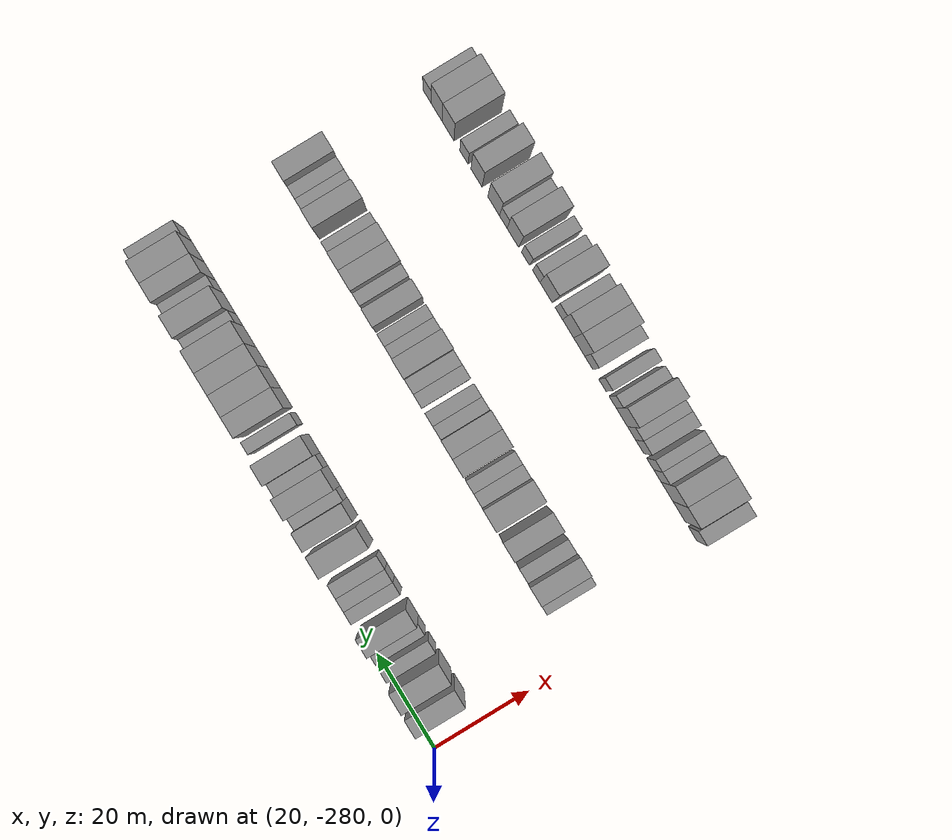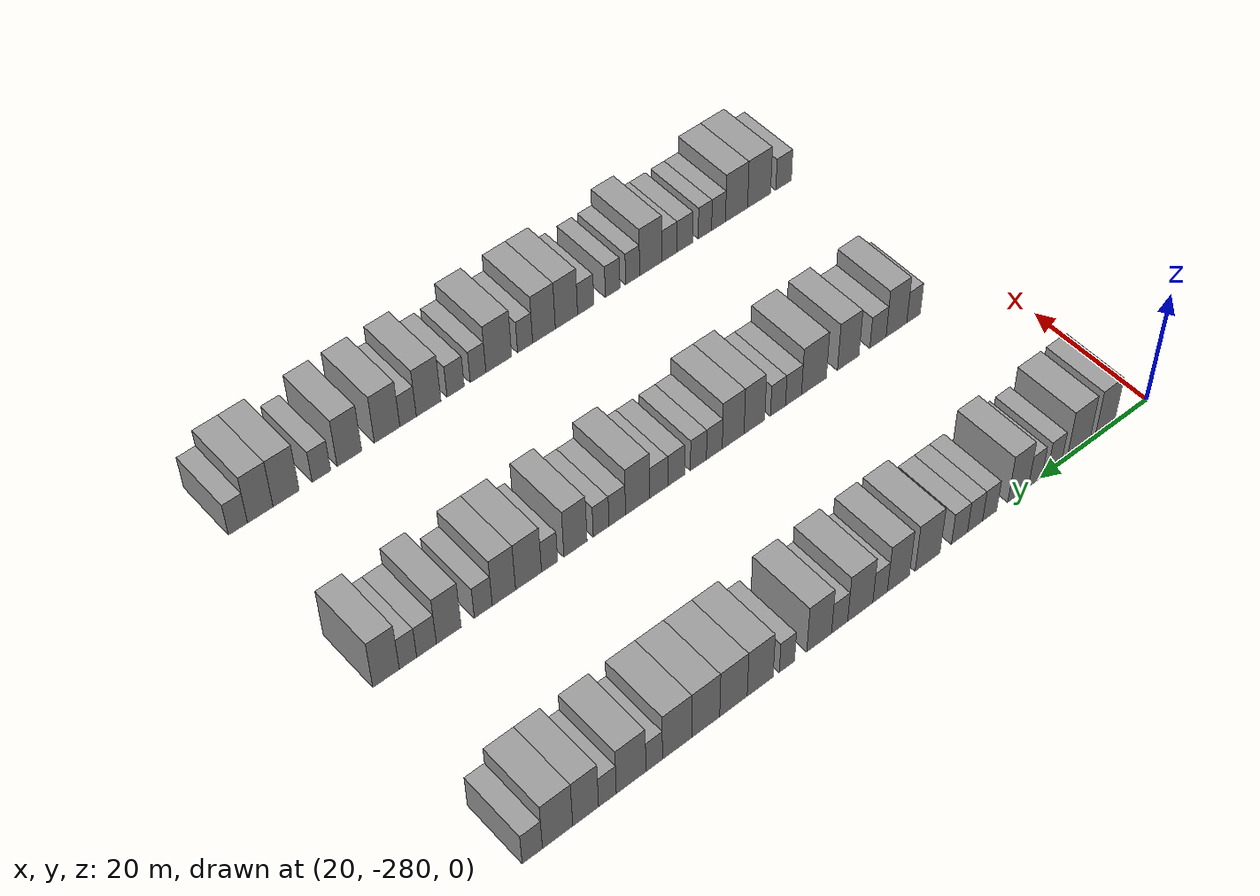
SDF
<sdf version="1.6">
 <world name="default">
  <model name="building_55">
   <static>1</static>
   <pose>25.0000 -271.9595 0 0.000000 0.000000 0.000000</pose>
   <link name="link">
    <pose>0 0 4.50 0 0 0</pose>
    <collision name="collision"><geometry><box><size>10.0000 3.6472 9.0000</size></box></geometry></collision>
    <visual name="visual">
     <cast_shadows>0</cast_shadows>
     <geometry><box><size>10.0000 3.6472 9.0000</size></box></geometry>
     <material>
      <script>
       <uri>model://grey_wall/materials/scripts</uri>
       <uri>model://grey_wall/materials/textures</uri>
       <name>vrc/grey_wall</name>
      </script>
     </material>
    </visual>
   </link>
  </model>
  <model name="building_56">
   <static>1</static>
   <pose>25.0000 -267.0310 0 0.000000 0.000000 0.000000</pose>
   <link name="link">
    <pose>0 0 4.50 0 0 0</pose>
    <collision name="collision"><geometry><box><size>10.0000 4.2097 9.0000</size></box></geometry></collision>
    <visual name="visual">
     <cast_shadows>0</cast_shadows>
     <geometry><box><size>10.0000 4.2097 9.0000</size></box></geometry>
     <material>
      <script>
       <uri>model://grey_wall/materials/scripts</uri>
       <uri>model://grey_wall/materials/textures</uri>
       <name>vrc/grey_wall</name>
      </script>
     </material>
    </visual>
   </link>
  </model>
  <model name="building_57">
   <static>1</static>
   <pose>25.0000 -262.6069 0 0.000000 0.000000 0.000000</pose>
   <link name="link">
    <pose>0 0 3.00 0 0 0</pose>
    <collision name="collision"><geometry><box><size>10.0000 2.6385 6.0000</size></box></geometry></collision>
    <visual name="visual">
     <cast_shadows>0</cast_shadows>
     <geometry><box><size>10.0000 2.6385 6.0000</size></box></geometry>
     <material>
      <script>
       <uri>model://grey_wall/materials/scripts</uri>
       <uri>model://grey_wall/materials/textures</uri>
       <name>vrc/grey_wall</name>
      </script>
     </material>
    </visual>
   </link>
  </model>
  <model name="building_58">
   <static>1</static>
   <pose>25.0000 -259.0505 0 0.000000 0.000000 0.000000</pose>
   <link name="link">
    <pose>0 0 3.00 0 0 0</pose>
    <collision name="collision"><geometry><box><size>10.0000 2.4742 6.0000</size></box></geometry></collision>
    <visual name="visual">
     <cast_shadows>0</cast_shadows>
     <geometry><box><size>10.0000 2.4742 6.0000</size></box></geometry>
     <material>
      <script>
       <uri>model://grey_wall/materials/scripts</uri>
       <uri>model://grey_wall/materials/textures</uri>
       <name>vrc/grey_wall</name>
      </script>
     </material>
    </visual>
   </link>
  </model>
  <model name="building_59">
   <static>1</static>
   <pose>25.0000 -255.9368 0 0.000000 0.000000 0.000000</pose>
   <link name="link">
    <pose>0 0 4.50 0 0 0</pose>
    <collision name="collision"><geometry><box><size>10.0000 3.7534 9.0000</size></box></geometry></collision>
    <visual name="visual">
     <cast_shadows>0</cast_shadows>
     <geometry><box><size>10.0000 3.7534 9.0000</size></box></geometry>
     <material>
      <script>
       <uri>model://grey_wall/materials/scripts</uri>
       <uri>model://grey_wall/materials/textures</uri>
       <name>vrc/grey_wall</name>
      </script>
     </material>
    </visual>
   </link>
  </model>
  <model name="building_60">
   <static>1</static>
   <pose>25.0000 -250.7882 0 0.000000 0.000000 0.000000</pose>
   <link name="link">
    <pose>0 0 3.00 0 0 0</pose>
    <collision name="collision"><geometry><box><size>10.0000 2.5439 6.0000</size></box></geometry></collision>
    <visual name="visual">
     <cast_shadows>0</cast_shadows>
     <geometry><box><size>10.0000 2.5439 6.0000</size></box></geometry>
     <material>
      <script>
       <uri>model://grey_wall/materials/scripts</uri>
       <uri>model://grey_wall/materials/textures</uri>
       <name>vrc/grey_wall</name>
      </script>
     </material>
    </visual>
   </link>
  </model>
  <model name="building_61">
   <static>1</static>
   <pose>25.0000 -248.1809 0 0.000000 0.000000 0.000000</pose>
   <link name="link">
    <pose>0 0 3.00 0 0 0</pose>
    <collision name="collision"><geometry><box><size>10.0000 2.6706 6.0000</size></box></geometry></collision>
    <visual name="visual">
     <cast_shadows>0</cast_shadows>
     <geometry><box><size>10.0000 2.6706 6.0000</size></box></geometry>
     <material>
      <script>
       <uri>model://grey_wall/materials/scripts</uri>
       <uri>model://grey_wall/materials/textures</uri>
       <name>vrc/grey_wall</name>
      </script>
     </material>
    </visual>
   </link>
  </model>
  <model name="building_62">
   <static>1</static>
   <pose>25.0000 -245.4328 0 0.000000 0.000000 0.000000</pose>
   <link name="link">
    <pose>0 0 3.00 0 0 0</pose>
    <collision name="collision"><geometry><box><size>10.0000 2.8257 6.0000</size></box></geometry></collision>
    <visual name="visual">
     <cast_shadows>0</cast_shadows>
     <geometry><box><size>10.0000 2.8257 6.0000</size></box></geometry>
     <material>
      <script>
       <uri>model://grey_wall/materials/scripts</uri>
       <uri>model://grey_wall/materials/textures</uri>
       <name>vrc/grey_wall</name>
      </script>
     </material>
    </visual>
   </link>
  </model>
  <model name="building_63">
   <static>1</static>
   <pose>25.0000 -239.8672 0 0.000000 0.000000 0.000000</pose>
   <link name="link">
    <pose>0 0 4.50 0 0 0</pose>
    <collision name="collision"><geometry><box><size>10.0000 4.3054 9.0000</size></box></geometry></collision>
    <visual name="visual">
     <cast_shadows>0</cast_shadows>
     <geometry><box><size>10.0000 4.3054 9.0000</size></box></geometry>
     <material>
      <script>
       <uri>model://grey_wall/materials/scripts</uri>
       <uri>model://grey_wall/materials/textures</uri>
       <name>vrc/grey_wall</name>
      </script>
     </material>
    </visual>
   </link>
  </model>
  <model name="building_64">
   <static>1</static>
   <pose>25.0000 -234.8320 0 0.000000 0.000000 0.000000</pose>
   <link name="link">
    <pose>0 0 4.50 0 0 0</pose>
    <collision name="collision"><geometry><box><size>10.0000 3.7650 9.0000</size></box></geometry></collision>
    <visual name="visual">
     <cast_shadows>0</cast_shadows>
     <geometry><box><size>10.0000 3.7650 9.0000</size></box></geometry>
     <material>
      <script>
       <uri>model://grey_wall/materials/scripts</uri>
       <uri>model://grey_wall/materials/textures</uri>
       <name>vrc/grey_wall</name>
      </script>
     </material>
    </visual>
   </link>
  </model>
  <model name="building_65">
   <static>1</static>
   <pose>25.0000 -231.7167 0 0.000000 0.000000 0.000000</pose>
   <link name="link">
    <pose>0 0 3.00 0 0 0</pose>
    <collision name="collision"><geometry><box><size>10.0000 2.4655 6.0000</size></box></geometry></collision>
    <visual name="visual">
     <cast_shadows>0</cast_shadows>
     <geometry><box><size>10.0000 2.4655 6.0000</size></box></geometry>
     <material>
      <script>
       <uri>model://grey_wall/materials/scripts</uri>
       <uri>model://grey_wall/materials/textures</uri>
       <name>vrc/grey_wall</name>
      </script>
     </material>
    </visual>
   </link>
  </model>
  <model name="building_66">
   <static>1</static>
   <pose>25.0000 -228.3686 0 0.000000 0.000000 0.000000</pose>
   <link name="link">
    <pose>0 0 4.50 0 0 0</pose>
    <collision name="collision"><geometry><box><size>10.0000 4.2307 9.0000</size></box></geometry></collision>
    <visual name="visual">
     <cast_shadows>0</cast_shadows>
     <geometry><box><size>10.0000 4.2307 9.0000</size></box></geometry>
     <material>
      <script>
       <uri>model://grey_wall/materials/scripts</uri>
       <uri>model://grey_wall/materials/textures</uri>
       <name>vrc/grey_wall</name>
      </script>
     </material>
    </visual>
   </link>
  </model>
  <model name="building_67">
   <static>1</static>
   <pose>25.0000 -224.9166 0 0.000000 0.000000 0.000000</pose>
   <link name="link">
    <pose>0 0 3.00 0 0 0</pose>
    <collision name="collision"><geometry><box><size>10.0000 2.6733 6.0000</size></box></geometry></collision>
    <visual name="visual">
     <cast_shadows>0</cast_shadows>
     <geometry><box><size>10.0000 2.6733 6.0000</size></box></geometry>
     <material>
      <script>
       <uri>model://grey_wall/materials/scripts</uri>
       <uri>model://grey_wall/materials/textures</uri>
       <name>vrc/grey_wall</name>
      </script>
     </material>
    </visual>
   </link>
  </model>
  <model name="building_68">
   <static>1</static>
   <pose>25.0000 -221.5466 0 0.000000 0.000000 0.000000</pose>
   <link name="link">
    <pose>0 0 4.50 0 0 0</pose>
    <collision name="collision"><geometry><box><size>10.0000 4.0667 9.0000</size></box></geometry></collision>
    <visual name="visual">
     <cast_shadows>0</cast_shadows>
     <geometry><box><size>10.0000 4.0667 9.0000</size></box></geometry>
     <material>
      <script>
       <uri>model://grey_wall/materials/scripts</uri>
       <uri>model://grey_wall/materials/textures</uri>
       <name>vrc/grey_wall</name>
      </script>
     </material>
    </visual>
   </link>
  </model>
  <model name="building_69">
   <static>1</static>
   <pose>25.0000 -216.2718 0 0.000000 0.000000 0.000000</pose>
   <link name="link">
    <pose>0 0 3.00 0 0 0</pose>
    <collision name="collision"><geometry><box><size>10.0000 2.4829 6.0000</size></box></geometry></collision>
    <visual name="visual">
     <cast_shadows>0</cast_shadows>
     <geometry><box><size>10.0000 2.4829 6.0000</size></box></geometry>
     <material>
      <script>
       <uri>model://grey_wall/materials/scripts</uri>
       <uri>model://grey_wall/materials/textures</uri>
       <name>vrc/grey_wall</name>
      </script>
     </material>
    </visual>
   </link>
  </model>
  <model name="building_70">
   <static>1</static>
   <pose>25.0000 -211.9600 0 0.000000 0.000000 0.000000</pose>
   <link name="link">
    <pose>0 0 4.50 0 0 0</pose>
    <collision name="collision"><geometry><box><size>10.0000 4.1408 9.0000</size></box></geometry></collision>
    <visual name="visual">
     <cast_shadows>0</cast_shadows>
     <geometry><box><size>10.0000 4.1408 9.0000</size></box></geometry>
     <material>
      <script>
       <uri>model://grey_wall/materials/scripts</uri>
       <uri>model://grey_wall/materials/textures</uri>
       <name>vrc/grey_wall</name>
      </script>
     </material>
    </visual>
   </link>
  </model>
  <model name="building_71">
   <static>1</static>
   <pose>25.0000 -207.7153 0 0.000000 0.000000 0.000000</pose>
   <link name="link">
    <pose>0 0 4.50 0 0 0</pose>
    <collision name="collision"><geometry><box><size>10.0000 4.3486 9.0000</size></box></geometry></collision>
    <visual name="visual">
     <cast_shadows>0</cast_shadows>
     <geometry><box><size>10.0000 4.3486 9.0000</size></box></geometry>
     <material>
      <script>
       <uri>model://grey_wall/materials/scripts</uri>
       <uri>model://grey_wall/materials/textures</uri>
       <name>vrc/grey_wall</name>
      </script>
     </material>
    </visual>
   </link>
  </model>
  <model name="building_72">
   <static>1</static>
   <pose>25.0000 -203.3514 0 0.000000 0.000000 0.000000</pose>
   <link name="link">
    <pose>0 0 4.50 0 0 0</pose>
    <collision name="collision"><geometry><box><size>10.0000 4.3791 9.0000</size></box></geometry></collision>
    <visual name="visual">
     <cast_shadows>0</cast_shadows>
     <geometry><box><size>10.0000 4.3791 9.0000</size></box></geometry>
     <material>
      <script>
       <uri>model://grey_wall/materials/scripts</uri>
       <uri>model://grey_wall/materials/textures</uri>
       <name>vrc/grey_wall</name>
      </script>
     </material>
    </visual>
   </link>
  </model>
  <model name="building_73">
   <static>1</static>
   <pose>25.0000 -198.9130 0 0.000000 0.000000 0.000000</pose>
   <link name="link">
    <pose>0 0 4.50 0 0 0</pose>
    <collision name="collision"><geometry><box><size>10.0000 4.4978 9.0000</size></box></geometry></collision>
    <visual name="visual">
     <cast_shadows>0</cast_shadows>
     <geometry><box><size>10.0000 4.4978 9.0000</size></box></geometry>
     <material>
      <script>
       <uri>model://grey_wall/materials/scripts</uri>
       <uri>model://grey_wall/materials/textures</uri>
       <name>vrc/grey_wall</name>
      </script>
     </material>
    </visual>
   </link>
  </model>
  <model name="building_74">
   <static>1</static>
   <pose>25.0000 -195.4027 0 0.000000 0.000000 0.000000</pose>
   <link name="link">
    <pose>0 0 3.00 0 0 0</pose>
    <collision name="collision"><geometry><box><size>10.0000 2.5228 6.0000</size></box></geometry></collision>
    <visual name="visual">
     <cast_shadows>0</cast_shadows>
     <geometry><box><size>10.0000 2.5228 6.0000</size></box></geometry>
     <material>
      <script>
       <uri>model://grey_wall/materials/scripts</uri>
       <uri>model://grey_wall/materials/textures</uri>
       <name>vrc/grey_wall</name>
      </script>
     </material>
    </visual>
   </link>
  </model>
  <model name="building_75">
   <static>1</static>
   <pose>25.0000 -191.9128 0 0.000000 0.000000 0.000000</pose>
   <link name="link">
    <pose>0 0 4.50 0 0 0</pose>
    <collision name="collision"><geometry><box><size>10.0000 4.4570 9.0000</size></box></geometry></collision>
    <visual name="visual">
     <cast_shadows>0</cast_shadows>
     <geometry><box><size>10.0000 4.4570 9.0000</size></box></geometry>
     <material>
      <script>
       <uri>model://grey_wall/materials/scripts</uri>
       <uri>model://grey_wall/materials/textures</uri>
       <name>vrc/grey_wall</name>
      </script>
     </material>
    </visual>
   </link>
  </model>
  <model name="building_76">
   <static>1</static>
   <pose>25.0000 -188.3634 0 0.000000 0.000000 0.000000</pose>
   <link name="link">
    <pose>0 0 3.00 0 0 0</pose>
    <collision name="collision"><geometry><box><size>10.0000 2.6416 6.0000</size></box></geometry></collision>
    <visual name="visual">
     <cast_shadows>0</cast_shadows>
     <geometry><box><size>10.0000 2.6416 6.0000</size></box></geometry>
     <material>
      <script>
       <uri>model://grey_wall/materials/scripts</uri>
       <uri>model://grey_wall/materials/textures</uri>
       <name>vrc/grey_wall</name>
      </script>
     </material>
    </visual>
   </link>
  </model>
  <model name="building_77">
   <static>1</static>
   <pose>25.0000 -185.1366 0 0.000000 0.000000 0.000000</pose>
   <link name="link">
    <pose>0 0 4.50 0 0 0</pose>
    <collision name="collision"><geometry><box><size>10.0000 3.8121 9.0000</size></box></geometry></collision>
    <visual name="visual">
     <cast_shadows>0</cast_shadows>
     <geometry><box><size>10.0000 3.8121 9.0000</size></box></geometry>
     <material>
      <script>
       <uri>model://grey_wall/materials/scripts</uri>
       <uri>model://grey_wall/materials/textures</uri>
       <name>vrc/grey_wall</name>
      </script>
     </material>
    </visual>
   </link>
  </model>
  <model name="building_78">
   <static>1</static>
   <pose>25.0000 -181.0215 0 0.000000 0.000000 0.000000</pose>
   <link name="link">
    <pose>0 0 4.50 0 0 0</pose>
    <collision name="collision"><geometry><box><size>10.0000 4.4180 9.0000</size></box></geometry></collision>
    <visual name="visual">
     <cast_shadows>0</cast_shadows>
     <geometry><box><size>10.0000 4.4180 9.0000</size></box></geometry>
     <material>
      <script>
       <uri>model://grey_wall/materials/scripts</uri>
       <uri>model://grey_wall/materials/textures</uri>
       <name>vrc/grey_wall</name>
      </script>
     </material>
    </visual>
   </link>
  </model>
  <model name="building_79">
   <static>1</static>
   <pose>25.0000 -177.3438 0 0.000000 0.000000 0.000000</pose>
   <link name="link">
    <pose>0 0 3.00 0 0 0</pose>
    <collision name="collision"><geometry><box><size>10.0000 2.9374 6.0000</size></box></geometry></collision>
    <visual name="visual">
     <cast_shadows>0</cast_shadows>
     <geometry><box><size>10.0000 2.9374 6.0000</size></box></geometry>
     <material>
      <script>
       <uri>model://grey_wall/materials/scripts</uri>
       <uri>model://grey_wall/materials/textures</uri>
       <name>vrc/grey_wall</name>
      </script>
     </material>
    </visual>
   </link>
  </model>
  <model name="building_291">
   <static>1</static>
   <pose>55.0000 -267.0393 0 0.000000 0.000000 0.000000</pose>
   <link name="link">
    <pose>0 0 3.00 0 0 0</pose>
    <collision name="collision"><geometry><box><size>10.0000 2.5404 6.0000</size></box></geometry></collision>
    <visual name="visual">
     <cast_shadows>0</cast_shadows>
     <geometry><box><size>10.0000 2.5404 6.0000</size></box></geometry>
     <material>
      <script>
       <uri>model://grey_wall/materials/scripts</uri>
       <uri>model://grey_wall/materials/textures</uri>
       <name>vrc/grey_wall</name>
      </script>
     </material>
    </visual>
   </link>
  </model>
  <model name="building_292">
   <static>1</static>
   <pose>55.0000 -263.8429 0 0.000000 0.000000 0.000000</pose>
   <link name="link">
    <pose>0 0 4.50 0 0 0</pose>
    <collision name="collision"><geometry><box><size>10.0000 3.8524 9.0000</size></box></geometry></collision>
    <visual name="visual">
     <cast_shadows>0</cast_shadows>
     <geometry><box><size>10.0000 3.8524 9.0000</size></box></geometry>
     <material>
      <script>
       <uri>model://grey_wall/materials/scripts</uri>
       <uri>model://grey_wall/materials/textures</uri>
       <name>vrc/grey_wall</name>
      </script>
     </material>
    </visual>
   </link>
  </model>
  <model name="building_293">
   <static>1</static>
   <pose>55.0000 -260.4211 0 0.000000 0.000000 0.000000</pose>
   <link name="link">
    <pose>0 0 3.00 0 0 0</pose>
    <collision name="collision"><geometry><box><size>10.0000 2.9912 6.0000</size></box></geometry></collision>
    <visual name="visual">
     <cast_shadows>0</cast_shadows>
     <geometry><box><size>10.0000 2.9912 6.0000</size></box></geometry>
     <material>
      <script>
       <uri>model://grey_wall/materials/scripts</uri>
       <uri>model://grey_wall/materials/textures</uri>
       <name>vrc/grey_wall</name>
      </script>
     </material>
    </visual>
   </link>
  </model>
  <model name="building_294">
   <static>1</static>
   <pose>55.0000 -254.9683 0 0.000000 0.000000 0.000000</pose>
   <link name="link">
    <pose>0 0 4.50 0 0 0</pose>
    <collision name="collision"><geometry><box><size>10.0000 3.9144 9.0000</size></box></geometry></collision>
    <visual name="visual">
     <cast_shadows>0</cast_shadows>
     <geometry><box><size>10.0000 3.9144 9.0000</size></box></geometry>
     <material>
      <script>
       <uri>model://grey_wall/materials/scripts</uri>
       <uri>model://grey_wall/materials/textures</uri>
       <name>vrc/grey_wall</name>
      </script>
     </material>
    </visual>
   </link>
  </model>
  <model name="building_295">
   <static>1</static>
   <pose>55.0000 -248.7793 0 0.000000 0.000000 0.000000</pose>
   <link name="link">
    <pose>0 0 4.50 0 0 0</pose>
    <collision name="collision"><geometry><box><size>10.0000 4.4635 9.0000</size></box></geometry></collision>
    <visual name="visual">
     <cast_shadows>0</cast_shadows>
     <geometry><box><size>10.0000 4.4635 9.0000</size></box></geometry>
     <material>
      <script>
       <uri>model://grey_wall/materials/scripts</uri>
       <uri>model://grey_wall/materials/textures</uri>
       <name>vrc/grey_wall</name>
      </script>
     </material>
    </visual>
   </link>
  </model>
  <model name="building_296">
   <static>1</static>
   <pose>55.0000 -245.1224 0 0.000000 0.000000 0.000000</pose>
   <link name="link">
    <pose>0 0 3.00 0 0 0</pose>
    <collision name="collision"><geometry><box><size>10.0000 2.8504 6.0000</size></box></geometry></collision>
    <visual name="visual">
     <cast_shadows>0</cast_shadows>
     <geometry><box><size>10.0000 2.8504 6.0000</size></box></geometry>
     <material>
      <script>
       <uri>model://grey_wall/materials/scripts</uri>
       <uri>model://grey_wall/materials/textures</uri>
       <name>vrc/grey_wall</name>
      </script>
     </material>
    </visual>
   </link>
  </model>
  <model name="building_297">
   <static>1</static>
   <pose>55.0000 -242.3772 0 0.000000 0.000000 0.000000</pose>
   <link name="link">
    <pose>0 0 3.00 0 0 0</pose>
    <collision name="collision"><geometry><box><size>10.0000 2.6400 6.0000</size></box></geometry></collision>
    <visual name="visual">
     <cast_shadows>0</cast_shadows>
     <geometry><box><size>10.0000 2.6400 6.0000</size></box></geometry>
     <material>
      <script>
       <uri>model://grey_wall/materials/scripts</uri>
       <uri>model://grey_wall/materials/textures</uri>
       <name>vrc/grey_wall</name>
      </script>
     </material>
    </visual>
   </link>
  </model>
  <model name="building_298">
   <static>1</static>
   <pose>55.0000 -238.2558 0 0.000000 0.000000 0.000000</pose>
   <link name="link">
    <pose>0 0 4.50 0 0 0</pose>
    <collision name="collision"><geometry><box><size>10.0000 3.6026 9.0000</size></box></geometry></collision>
    <visual name="visual">
     <cast_shadows>0</cast_shadows>
     <geometry><box><size>10.0000 3.6026 9.0000</size></box></geometry>
     <material>
      <script>
       <uri>model://grey_wall/materials/scripts</uri>
       <uri>model://grey_wall/materials/textures</uri>
       <name>vrc/grey_wall</name>
      </script>
     </material>
    </visual>
   </link>
  </model>
  <model name="building_299">
   <static>1</static>
   <pose>55.0000 -234.5783 0 0.000000 0.000000 0.000000</pose>
   <link name="link">
    <pose>0 0 4.50 0 0 0</pose>
    <collision name="collision"><geometry><box><size>10.0000 3.7525 9.0000</size></box></geometry></collision>
    <visual name="visual">
     <cast_shadows>0</cast_shadows>
     <geometry><box><size>10.0000 3.7525 9.0000</size></box></geometry>
     <material>
      <script>
       <uri>model://grey_wall/materials/scripts</uri>
       <uri>model://grey_wall/materials/textures</uri>
       <name>vrc/grey_wall</name>
      </script>
     </material>
    </visual>
   </link>
  </model>
  <model name="building_300">
   <static>1</static>
   <pose>55.0000 -231.3506 0 0.000000 0.000000 0.000000</pose>
   <link name="link">
    <pose>0 0 3.00 0 0 0</pose>
    <collision name="collision"><geometry><box><size>10.0000 2.7028 6.0000</size></box></geometry></collision>
    <visual name="visual">
     <cast_shadows>0</cast_shadows>
     <geometry><box><size>10.0000 2.7028 6.0000</size></box></geometry>
     <material>
      <script>
       <uri>model://grey_wall/materials/scripts</uri>
       <uri>model://grey_wall/materials/textures</uri>
       <name>vrc/grey_wall</name>
      </script>
     </material>
    </visual>
   </link>
  </model>
  <model name="building_301">
   <static>1</static>
   <pose>55.0000 -228.6457 0 0.000000 0.000000 0.000000</pose>
   <link name="link">
    <pose>0 0 3.00 0 0 0</pose>
    <collision name="collision"><geometry><box><size>10.0000 2.7071 6.0000</size></box></geometry></collision>
    <visual name="visual">
     <cast_shadows>0</cast_shadows>
     <geometry><box><size>10.0000 2.7071 6.0000</size></box></geometry>
     <material>
      <script>
       <uri>model://grey_wall/materials/scripts</uri>
       <uri>model://grey_wall/materials/textures</uri>
       <name>vrc/grey_wall</name>
      </script>
     </material>
    </visual>
   </link>
  </model>
  <model name="building_302">
   <static>1</static>
   <pose>55.0000 -224.8862 0 0.000000 0.000000 0.000000</pose>
   <link name="link">
    <pose>0 0 3.00 0 0 0</pose>
    <collision name="collision"><geometry><box><size>10.0000 2.8118 6.0000</size></box></geometry></collision>
    <visual name="visual">
     <cast_shadows>0</cast_shadows>
     <geometry><box><size>10.0000 2.8118 6.0000</size></box></geometry>
     <material>
      <script>
       <uri>model://grey_wall/materials/scripts</uri>
       <uri>model://grey_wall/materials/textures</uri>
       <name>vrc/grey_wall</name>
      </script>
     </material>
    </visual>
   </link>
  </model>
  <model name="building_303">
   <static>1</static>
   <pose>55.0000 -221.9806 0 0.000000 0.000000 0.000000</pose>
   <link name="link">
    <pose>0 0 3.00 0 0 0</pose>
    <collision name="collision"><geometry><box><size>10.0000 2.9994 6.0000</size></box></geometry></collision>
    <visual name="visual">
     <cast_shadows>0</cast_shadows>
     <geometry><box><size>10.0000 2.9994 6.0000</size></box></geometry>
     <material>
      <script>
       <uri>model://grey_wall/materials/scripts</uri>
       <uri>model://grey_wall/materials/textures</uri>
       <name>vrc/grey_wall</name>
      </script>
     </material>
    </visual>
   </link>
  </model>
  <model name="building_304">
   <static>1</static>
   <pose>55.0000 -218.4861 0 0.000000 0.000000 0.000000</pose>
   <link name="link">
    <pose>0 0 4.50 0 0 0</pose>
    <collision name="collision"><geometry><box><size>10.0000 3.9897 9.0000</size></box></geometry></collision>
    <visual name="visual">
     <cast_shadows>0</cast_shadows>
     <geometry><box><size>10.0000 3.9897 9.0000</size></box></geometry>
     <material>
      <script>
       <uri>model://grey_wall/materials/scripts</uri>
       <uri>model://grey_wall/materials/textures</uri>
       <name>vrc/grey_wall</name>
      </script>
     </material>
    </visual>
   </link>
  </model>
  <model name="building_305">
   <static>1</static>
   <pose>55.0000 -215.1418 0 0.000000 0.000000 0.000000</pose>
   <link name="link">
    <pose>0 0 3.00 0 0 0</pose>
    <collision name="collision"><geometry><box><size>10.0000 2.6989 6.0000</size></box></geometry></collision>
    <visual name="visual">
     <cast_shadows>0</cast_shadows>
     <geometry><box><size>10.0000 2.6989 6.0000</size></box></geometry>
     <material>
      <script>
       <uri>model://grey_wall/materials/scripts</uri>
       <uri>model://grey_wall/materials/textures</uri>
       <name>vrc/grey_wall</name>
      </script>
     </material>
    </visual>
   </link>
  </model>
  <model name="building_306">
   <static>1</static>
   <pose>55.0000 -212.5102 0 0.000000 0.000000 0.000000</pose>
   <link name="link">
    <pose>0 0 3.00 0 0 0</pose>
    <collision name="collision"><geometry><box><size>10.0000 2.5643 6.0000</size></box></geometry></collision>
    <visual name="visual">
     <cast_shadows>0</cast_shadows>
     <geometry><box><size>10.0000 2.5643 6.0000</size></box></geometry>
     <material>
      <script>
       <uri>model://grey_wall/materials/scripts</uri>
       <uri>model://grey_wall/materials/textures</uri>
       <name>vrc/grey_wall</name>
      </script>
     </material>
    </visual>
   </link>
  </model>
  <model name="building_307">
   <static>1</static>
   <pose>55.0000 -208.3705 0 0.000000 0.000000 0.000000</pose>
   <link name="link">
    <pose>0 0 4.50 0 0 0</pose>
    <collision name="collision"><geometry><box><size>10.0000 3.7149 9.0000</size></box></geometry></collision>
    <visual name="visual">
     <cast_shadows>0</cast_shadows>
     <geometry><box><size>10.0000 3.7149 9.0000</size></box></geometry>
     <material>
      <script>
       <uri>model://grey_wall/materials/scripts</uri>
       <uri>model://grey_wall/materials/textures</uri>
       <name>vrc/grey_wall</name>
      </script>
     </material>
    </visual>
   </link>
  </model>
  <model name="building_308">
   <static>1</static>
   <pose>55.0000 -204.2377 0 0.000000 0.000000 0.000000</pose>
   <link name="link">
    <pose>0 0 3.00 0 0 0</pose>
    <collision name="collision"><geometry><box><size>10.0000 2.5507 6.0000</size></box></geometry></collision>
    <visual name="visual">
     <cast_shadows>0</cast_shadows>
     <geometry><box><size>10.0000 2.5507 6.0000</size></box></geometry>
     <material>
      <script>
       <uri>model://grey_wall/materials/scripts</uri>
       <uri>model://grey_wall/materials/textures</uri>
       <name>vrc/grey_wall</name>
      </script>
     </material>
    </visual>
   </link>
  </model>
  <model name="building_309">
   <static>1</static>
   <pose>55.0000 -200.9218 0 0.000000 0.000000 0.000000</pose>
   <link name="link">
    <pose>0 0 4.50 0 0 0</pose>
    <collision name="collision"><geometry><box><size>10.0000 4.0811 9.0000</size></box></geometry></collision>
    <visual name="visual">
     <cast_shadows>0</cast_shadows>
     <geometry><box><size>10.0000 4.0811 9.0000</size></box></geometry>
     <material>
      <script>
       <uri>model://grey_wall/materials/scripts</uri>
       <uri>model://grey_wall/materials/textures</uri>
       <name>vrc/grey_wall</name>
      </script>
     </material>
    </visual>
   </link>
  </model>
  <model name="building_310">
   <static>1</static>
   <pose>55.0000 -197.0765 0 0.000000 0.000000 0.000000</pose>
   <link name="link">
    <pose>0 0 4.50 0 0 0</pose>
    <collision name="collision"><geometry><box><size>10.0000 3.6095 9.0000</size></box></geometry></collision>
    <visual name="visual">
     <cast_shadows>0</cast_shadows>
     <geometry><box><size>10.0000 3.6095 9.0000</size></box></geometry>
     <material>
      <script>
       <uri>model://grey_wall/materials/scripts</uri>
       <uri>model://grey_wall/materials/textures</uri>
       <name>vrc/grey_wall</name>
      </script>
     </material>
    </visual>
   </link>
  </model>
  <model name="building_311">
   <static>1</static>
   <pose>55.0000 -193.8818 0 0.000000 0.000000 0.000000</pose>
   <link name="link">
    <pose>0 0 3.00 0 0 0</pose>
    <collision name="collision"><geometry><box><size>10.0000 2.7800 6.0000</size></box></geometry></collision>
    <visual name="visual">
     <cast_shadows>0</cast_shadows>
     <geometry><box><size>10.0000 2.7800 6.0000</size></box></geometry>
     <material>
      <script>
       <uri>model://grey_wall/materials/scripts</uri>
       <uri>model://grey_wall/materials/textures</uri>
       <name>vrc/grey_wall</name>
      </script>
     </material>
    </visual>
   </link>
  </model>
  <model name="building_312">
   <static>1</static>
   <pose>55.0000 -188.6140 0 0.000000 0.000000 0.000000</pose>
   <link name="link">
    <pose>0 0 4.50 0 0 0</pose>
    <collision name="collision"><geometry><box><size>10.0000 3.7556 9.0000</size></box></geometry></collision>
    <visual name="visual">
     <cast_shadows>0</cast_shadows>
     <geometry><box><size>10.0000 3.7556 9.0000</size></box></geometry>
     <material>
      <script>
       <uri>model://grey_wall/materials/scripts</uri>
       <uri>model://grey_wall/materials/textures</uri>
       <name>vrc/grey_wall</name>
      </script>
     </material>
    </visual>
   </link>
  </model>
  <model name="building_313">
   <static>1</static>
   <pose>55.0000 -185.2572 0 0.000000 0.000000 0.000000</pose>
   <link name="link">
    <pose>0 0 3.00 0 0 0</pose>
    <collision name="collision"><geometry><box><size>10.0000 2.9581 6.0000</size></box></geometry></collision>
    <visual name="visual">
     <cast_shadows>0</cast_shadows>
     <geometry><box><size>10.0000 2.9581 6.0000</size></box></geometry>
     <material>
      <script>
       <uri>model://grey_wall/materials/scripts</uri>
       <uri>model://grey_wall/materials/textures</uri>
       <name>vrc/grey_wall</name>
      </script>
     </material>
    </visual>
   </link>
  </model>
  <model name="building_314">
   <static>1</static>
   <pose>55.0000 -182.4804 0 0.000000 0.000000 0.000000</pose>
   <link name="link">
    <pose>0 0 3.00 0 0 0</pose>
    <collision name="collision"><geometry><box><size>10.0000 2.5955 6.0000</size></box></geometry></collision>
    <visual name="visual">
     <cast_shadows>0</cast_shadows>
     <geometry><box><size>10.0000 2.5955 6.0000</size></box></geometry>
     <material>
      <script>
       <uri>model://grey_wall/materials/scripts</uri>
       <uri>model://grey_wall/materials/textures</uri>
       <name>vrc/grey_wall</name>
      </script>
     </material>
    </visual>
   </link>
  </model>
  <model name="building_315">
   <static>1</static>
   <pose>55.0000 -179.2193 0 0.000000 0.000000 0.000000</pose>
   <link name="link">
    <pose>0 0 4.50 0 0 0</pose>
    <collision name="collision"><geometry><box><size>10.0000 3.9267 9.0000</size></box></geometry></collision>
    <visual name="visual">
     <cast_shadows>0</cast_shadows>
     <geometry><box><size>10.0000 3.9267 9.0000</size></box></geometry>
     <material>
      <script>
       <uri>model://grey_wall/materials/scripts</uri>
       <uri>model://grey_wall/materials/textures</uri>
       <name>vrc/grey_wall</name>
      </script>
     </material>
    </visual>
   </link>
  </model>
  <model name="building_527">
   <static>1</static>
   <pose>85.0000 -271.0180 0 0.000000 0.000000 0.000000</pose>
   <link name="link">
    <pose>0 0 3.00 0 0 0</pose>
    <collision name="collision"><geometry><box><size>10.0000 2.9690 6.0000</size></box></geometry></collision>
    <visual name="visual">
     <cast_shadows>0</cast_shadows>
     <geometry><box><size>10.0000 2.9690 6.0000</size></box></geometry>
     <material>
      <script>
       <uri>model://grey_wall/materials/scripts</uri>
       <uri>model://grey_wall/materials/textures</uri>
       <name>vrc/grey_wall</name>
      </script>
     </material>
    </visual>
   </link>
  </model>
  <model name="building_528">
   <static>1</static>
   <pose>85.0000 -266.3637 0 0.000000 0.000000 0.000000</pose>
   <link name="link">
    <pose>0 0 4.50 0 0 0</pose>
    <collision name="collision"><geometry><box><size>10.0000 4.3396 9.0000</size></box></geometry></collision>
    <visual name="visual">
     <cast_shadows>0</cast_shadows>
     <geometry><box><size>10.0000 4.3396 9.0000</size></box></geometry>
     <material>
      <script>
       <uri>model://grey_wall/materials/scripts</uri>
       <uri>model://grey_wall/materials/textures</uri>
       <name>vrc/grey_wall</name>
      </script>
     </material>
    </visual>
   </link>
  </model>
  <model name="building_529">
   <static>1</static>
   <pose>85.0000 -262.1334 0 0.000000 0.000000 0.000000</pose>
   <link name="link">
    <pose>0 0 4.50 0 0 0</pose>
    <collision name="collision"><geometry><box><size>10.0000 4.1210 9.0000</size></box></geometry></collision>
    <visual name="visual">
     <cast_shadows>0</cast_shadows>
     <geometry><box><size>10.0000 4.1210 9.0000</size></box></geometry>
     <material>
      <script>
       <uri>model://grey_wall/materials/scripts</uri>
       <uri>model://grey_wall/materials/textures</uri>
       <name>vrc/grey_wall</name>
      </script>
     </material>
    </visual>
   </link>
  </model>
  <model name="building_530">
   <static>1</static>
   <pose>85.0000 -258.7859 0 0.000000 0.000000 0.000000</pose>
   <link name="link">
    <pose>0 0 3.00 0 0 0</pose>
    <collision name="collision"><geometry><box><size>10.0000 2.5741 6.0000</size></box></geometry></collision>
    <visual name="visual">
     <cast_shadows>0</cast_shadows>
     <geometry><box><size>10.0000 2.5741 6.0000</size></box></geometry>
     <material>
      <script>
       <uri>model://grey_wall/materials/scripts</uri>
       <uri>model://grey_wall/materials/textures</uri>
       <name>vrc/grey_wall</name>
      </script>
     </material>
    </visual>
   </link>
  </model>
  <model name="building_531">
   <static>1</static>
   <pose>85.0000 -256.2728 0 0.000000 0.000000 0.000000</pose>
   <link name="link">
    <pose>0 0 3.00 0 0 0</pose>
    <collision name="collision"><geometry><box><size>10.0000 2.4522 6.0000</size></box></geometry></collision>
    <visual name="visual">
     <cast_shadows>0</cast_shadows>
     <geometry><box><size>10.0000 2.4522 6.0000</size></box></geometry>
     <material>
      <script>
       <uri>model://grey_wall/materials/scripts</uri>
       <uri>model://grey_wall/materials/textures</uri>
       <name>vrc/grey_wall</name>
      </script>
     </material>
    </visual>
   </link>
  </model>
  <model name="building_532">
   <static>1</static>
   <pose>85.0000 -252.6139 0 0.000000 0.000000 0.000000</pose>
   <link name="link">
    <pose>0 0 3.00 0 0 0</pose>
    <collision name="collision"><geometry><box><size>10.0000 2.8656 6.0000</size></box></geometry></collision>
    <visual name="visual">
     <cast_shadows>0</cast_shadows>
     <geometry><box><size>10.0000 2.8656 6.0000</size></box></geometry>
     <material>
      <script>
       <uri>model://grey_wall/materials/scripts</uri>
       <uri>model://grey_wall/materials/textures</uri>
       <name>vrc/grey_wall</name>
      </script>
     </material>
    </visual>
   </link>
  </model>
  <model name="building_533">
   <static>1</static>
   <pose>85.0000 -249.7798 0 0.000000 0.000000 0.000000</pose>
   <link name="link">
    <pose>0 0 3.00 0 0 0</pose>
    <collision name="collision"><geometry><box><size>10.0000 2.8025 6.0000</size></box></geometry></collision>
    <visual name="visual">
     <cast_shadows>0</cast_shadows>
     <geometry><box><size>10.0000 2.8025 6.0000</size></box></geometry>
     <material>
      <script>
       <uri>model://grey_wall/materials/scripts</uri>
       <uri>model://grey_wall/materials/textures</uri>
       <name>vrc/grey_wall</name>
      </script>
     </material>
    </visual>
   </link>
  </model>
  <model name="building_534">
   <static>1</static>
   <pose>85.0000 -246.3937 0 0.000000 0.000000 0.000000</pose>
   <link name="link">
    <pose>0 0 4.50 0 0 0</pose>
    <collision name="collision"><geometry><box><size>10.0000 3.9698 9.0000</size></box></geometry></collision>
    <visual name="visual">
     <cast_shadows>0</cast_shadows>
     <geometry><box><size>10.0000 3.9698 9.0000</size></box></geometry>
     <material>
      <script>
       <uri>model://grey_wall/materials/scripts</uri>
       <uri>model://grey_wall/materials/textures</uri>
       <name>vrc/grey_wall</name>
      </script>
     </material>
    </visual>
   </link>
  </model>
  <model name="building_535">
   <static>1</static>
   <pose>85.0000 -243.1587 0 0.000000 0.000000 0.000000</pose>
   <link name="link">
    <pose>0 0 3.00 0 0 0</pose>
    <collision name="collision"><geometry><box><size>10.0000 2.5003 6.0000</size></box></geometry></collision>
    <visual name="visual">
     <cast_shadows>0</cast_shadows>
     <geometry><box><size>10.0000 2.5003 6.0000</size></box></geometry>
     <material>
      <script>
       <uri>model://grey_wall/materials/scripts</uri>
       <uri>model://grey_wall/materials/textures</uri>
       <name>vrc/grey_wall</name>
      </script>
     </material>
    </visual>
   </link>
  </model>
  <model name="building_536">
   <static>1</static>
   <pose>85.0000 -239.6136 0 0.000000 0.000000 0.000000</pose>
   <link name="link">
    <pose>0 0 3.00 0 0 0</pose>
    <collision name="collision"><geometry><box><size>10.0000 2.5898 6.0000</size></box></geometry></collision>
    <visual name="visual">
     <cast_shadows>0</cast_shadows>
     <geometry><box><size>10.0000 2.5898 6.0000</size></box></geometry>
     <material>
      <script>
       <uri>model://grey_wall/materials/scripts</uri>
       <uri>model://grey_wall/materials/textures</uri>
       <name>vrc/grey_wall</name>
      </script>
     </material>
    </visual>
   </link>
  </model>
  <model name="building_537">
   <static>1</static>
   <pose>85.0000 -234.8967 0 0.000000 0.000000 0.000000</pose>
   <link name="link">
    <pose>0 0 3.00 0 0 0</pose>
    <collision name="collision"><geometry><box><size>10.0000 2.8440 6.0000</size></box></geometry></collision>
    <visual name="visual">
     <cast_shadows>0</cast_shadows>
     <geometry><box><size>10.0000 2.8440 6.0000</size></box></geometry>
     <material>
      <script>
       <uri>model://grey_wall/materials/scripts</uri>
       <uri>model://grey_wall/materials/textures</uri>
       <name>vrc/grey_wall</name>
      </script>
     </material>
    </visual>
   </link>
  </model>
  <model name="building_538">
   <static>1</static>
   <pose>85.0000 -231.5458 0 0.000000 0.000000 0.000000</pose>
   <link name="link">
    <pose>0 0 4.50 0 0 0</pose>
    <collision name="collision"><geometry><box><size>10.0000 3.8579 9.0000</size></box></geometry></collision>
    <visual name="visual">
     <cast_shadows>0</cast_shadows>
     <geometry><box><size>10.0000 3.8579 9.0000</size></box></geometry>
     <material>
      <script>
       <uri>model://grey_wall/materials/scripts</uri>
       <uri>model://grey_wall/materials/textures</uri>
       <name>vrc/grey_wall</name>
      </script>
     </material>
    </visual>
   </link>
  </model>
  <model name="building_539">
   <static>1</static>
   <pose>85.0000 -227.6731 0 0.000000 0.000000 0.000000</pose>
   <link name="link">
    <pose>0 0 4.50 0 0 0</pose>
    <collision name="collision"><geometry><box><size>10.0000 3.8875 9.0000</size></box></geometry></collision>
    <visual name="visual">
     <cast_shadows>0</cast_shadows>
     <geometry><box><size>10.0000 3.8875 9.0000</size></box></geometry>
     <material>
      <script>
       <uri>model://grey_wall/materials/scripts</uri>
       <uri>model://grey_wall/materials/textures</uri>
       <name>vrc/grey_wall</name>
      </script>
     </material>
    </visual>
   </link>
  </model>
  <model name="building_540">
   <static>1</static>
   <pose>85.0000 -224.4523 0 0.000000 0.000000 0.000000</pose>
   <link name="link">
    <pose>0 0 3.00 0 0 0</pose>
    <collision name="collision"><geometry><box><size>10.0000 2.5542 6.0000</size></box></geometry></collision>
    <visual name="visual">
     <cast_shadows>0</cast_shadows>
     <geometry><box><size>10.0000 2.5542 6.0000</size></box></geometry>
     <material>
      <script>
       <uri>model://grey_wall/materials/scripts</uri>
       <uri>model://grey_wall/materials/textures</uri>
       <name>vrc/grey_wall</name>
      </script>
     </material>
    </visual>
   </link>
  </model>
  <model name="building_541">
   <static>1</static>
   <pose>85.0000 -220.0117 0 0.000000 0.000000 0.000000</pose>
   <link name="link">
    <pose>0 0 4.50 0 0 0</pose>
    <collision name="collision"><geometry><box><size>10.0000 4.3270 9.0000</size></box></geometry></collision>
    <visual name="visual">
     <cast_shadows>0</cast_shadows>
     <geometry><box><size>10.0000 4.3270 9.0000</size></box></geometry>
     <material>
      <script>
       <uri>model://grey_wall/materials/scripts</uri>
       <uri>model://grey_wall/materials/textures</uri>
       <name>vrc/grey_wall</name>
      </script>
     </material>
    </visual>
   </link>
  </model>
  <model name="building_542">
   <static>1</static>
   <pose>85.0000 -216.5463 0 0.000000 0.000000 0.000000</pose>
   <link name="link">
    <pose>0 0 3.00 0 0 0</pose>
    <collision name="collision"><geometry><box><size>10.0000 2.6039 6.0000</size></box></geometry></collision>
    <visual name="visual">
     <cast_shadows>0</cast_shadows>
     <geometry><box><size>10.0000 2.6039 6.0000</size></box></geometry>
     <material>
      <script>
       <uri>model://grey_wall/materials/scripts</uri>
       <uri>model://grey_wall/materials/textures</uri>
       <name>vrc/grey_wall</name>
      </script>
     </material>
    </visual>
   </link>
  </model>
  <model name="building_543">
   <static>1</static>
   <pose>85.0000 -212.8261 0 0.000000 0.000000 0.000000</pose>
   <link name="link">
    <pose>0 0 3.00 0 0 0</pose>
    <collision name="collision"><geometry><box><size>10.0000 2.8364 6.0000</size></box></geometry></collision>
    <visual name="visual">
     <cast_shadows>0</cast_shadows>
     <geometry><box><size>10.0000 2.8364 6.0000</size></box></geometry>
     <material>
      <script>
       <uri>model://grey_wall/materials/scripts</uri>
       <uri>model://grey_wall/materials/textures</uri>
       <name>vrc/grey_wall</name>
      </script>
     </material>
    </visual>
   </link>
  </model>
  <model name="building_544">
   <static>1</static>
   <pose>85.0000 -208.4075 0 0.000000 0.000000 0.000000</pose>
   <link name="link">
    <pose>0 0 4.50 0 0 0</pose>
    <collision name="collision"><geometry><box><size>10.0000 4.0008 9.0000</size></box></geometry></collision>
    <visual name="visual">
     <cast_shadows>0</cast_shadows>
     <geometry><box><size>10.0000 4.0008 9.0000</size></box></geometry>
     <material>
      <script>
       <uri>model://grey_wall/materials/scripts</uri>
       <uri>model://grey_wall/materials/textures</uri>
       <name>vrc/grey_wall</name>
      </script>
     </material>
    </visual>
   </link>
  </model>
  <model name="building_545">
   <static>1</static>
   <pose>85.0000 -205.0799 0 0.000000 0.000000 0.000000</pose>
   <link name="link">
    <pose>0 0 3.00 0 0 0</pose>
    <collision name="collision"><geometry><box><size>10.0000 2.6545 6.0000</size></box></geometry></collision>
    <visual name="visual">
     <cast_shadows>0</cast_shadows>
     <geometry><box><size>10.0000 2.6545 6.0000</size></box></geometry>
     <material>
      <script>
       <uri>model://grey_wall/materials/scripts</uri>
       <uri>model://grey_wall/materials/textures</uri>
       <name>vrc/grey_wall</name>
      </script>
     </material>
    </visual>
   </link>
  </model>
  <model name="building_546">
   <static>1</static>
   <pose>85.0000 -201.7120 0 0.000000 0.000000 0.000000</pose>
   <link name="link">
    <pose>0 0 4.50 0 0 0</pose>
    <collision name="collision"><geometry><box><size>10.0000 4.0812 9.0000</size></box></geometry></collision>
    <visual name="visual">
     <cast_shadows>0</cast_shadows>
     <geometry><box><size>10.0000 4.0812 9.0000</size></box></geometry>
     <material>
      <script>
       <uri>model://grey_wall/materials/scripts</uri>
       <uri>model://grey_wall/materials/textures</uri>
       <name>vrc/grey_wall</name>
      </script>
     </material>
    </visual>
   </link>
  </model>
  <model name="building_547">
   <static>1</static>
   <pose>85.0000 -195.7279 0 0.000000 0.000000 0.000000</pose>
   <link name="link">
    <pose>0 0 4.50 0 0 0</pose>
    <collision name="collision"><geometry><box><size>10.0000 3.8871 9.0000</size></box></geometry></collision>
    <visual name="visual">
     <cast_shadows>0</cast_shadows>
     <geometry><box><size>10.0000 3.8871 9.0000</size></box></geometry>
     <material>
      <script>
       <uri>model://grey_wall/materials/scripts</uri>
       <uri>model://grey_wall/materials/textures</uri>
       <name>vrc/grey_wall</name>
      </script>
     </material>
    </visual>
   </link>
  </model>
  <model name="building_548">
   <static>1</static>
   <pose>85.0000 -191.3432 0 0.000000 0.000000 0.000000</pose>
   <link name="link">
    <pose>0 0 3.00 0 0 0</pose>
    <collision name="collision"><geometry><box><size>10.0000 2.8822 6.0000</size></box></geometry></collision>
    <visual name="visual">
     <cast_shadows>0</cast_shadows>
     <geometry><box><size>10.0000 2.8822 6.0000</size></box></geometry>
     <material>
      <script>
       <uri>model://grey_wall/materials/scripts</uri>
       <uri>model://grey_wall/materials/textures</uri>
       <name>vrc/grey_wall</name>
      </script>
     </material>
    </visual>
   </link>
  </model>
  <model name="building_549">
   <static>1</static>
   <pose>85.0000 -185.9020 0 0.000000 0.000000 0.000000</pose>
   <link name="link">
    <pose>0 0 4.50 0 0 0</pose>
    <collision name="collision"><geometry><box><size>10.0000 4.0002 9.0000</size></box></geometry></collision>
    <visual name="visual">
     <cast_shadows>0</cast_shadows>
     <geometry><box><size>10.0000 4.0002 9.0000</size></box></geometry>
     <material>
      <script>
       <uri>model://grey_wall/materials/scripts</uri>
       <uri>model://grey_wall/materials/textures</uri>
       <name>vrc/grey_wall</name>
      </script>
     </material>
    </visual>
   </link>
  </model>
  <model name="building_550">
   <static>1</static>
   <pose>85.0000 -181.9650 0 0.000000 0.000000 0.000000</pose>
   <link name="link">
    <pose>0 0 4.50 0 0 0</pose>
    <collision name="collision"><geometry><box><size>10.0000 3.8738 9.0000</size></box></geometry></collision>
    <visual name="visual">
     <cast_shadows>0</cast_shadows>
     <geometry><box><size>10.0000 3.8738 9.0000</size></box></geometry>
     <material>
      <script>
       <uri>model://grey_wall/materials/scripts</uri>
       <uri>model://grey_wall/materials/textures</uri>
       <name>vrc/grey_wall</name>
      </script>
     </material>
    </visual>
   </link>
  </model>
  <model name="building_551">
   <static>1</static>
   <pose>85.0000 -178.5884 0 0.000000 0.000000 0.000000</pose>
   <link name="link">
    <pose>0 0 3.00 0 0 0</pose>
    <collision name="collision"><geometry><box><size>10.0000 2.8793 6.0000</size></box></geometry></collision>
    <visual name="visual">
     <cast_shadows>0</cast_shadows>
     <geometry><box><size>10.0000 2.8793 6.0000</size></box></geometry>
     <material>
      <script>
       <uri>model://grey_wall/materials/scripts</uri>
       <uri>model://grey_wall/materials/textures</uri>
       <name>vrc/grey_wall</name>
      </script>
     </material>
    </visual>
   </link>
  </model>
 </world>
</sdf>
